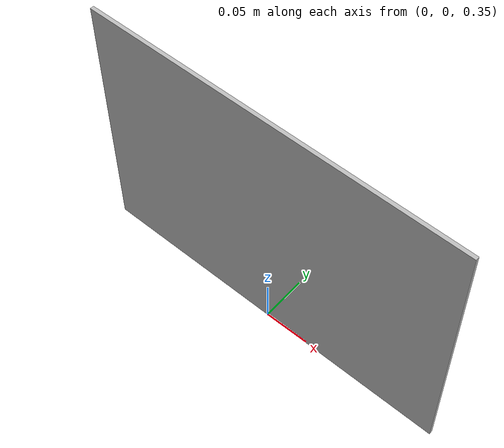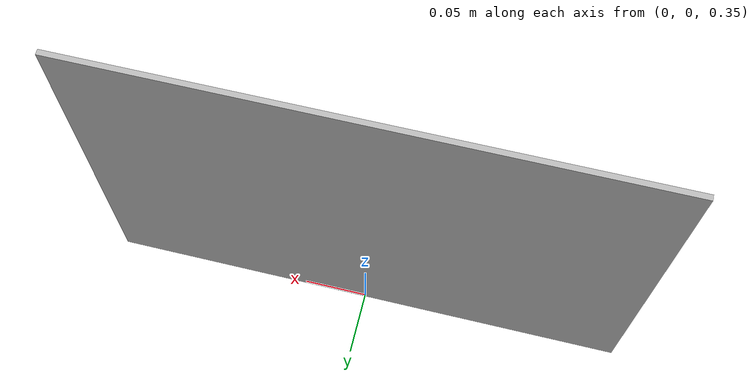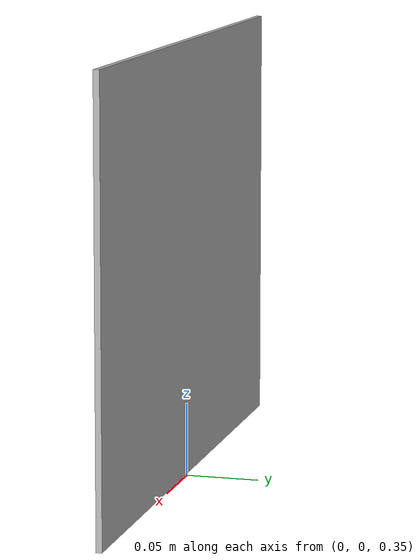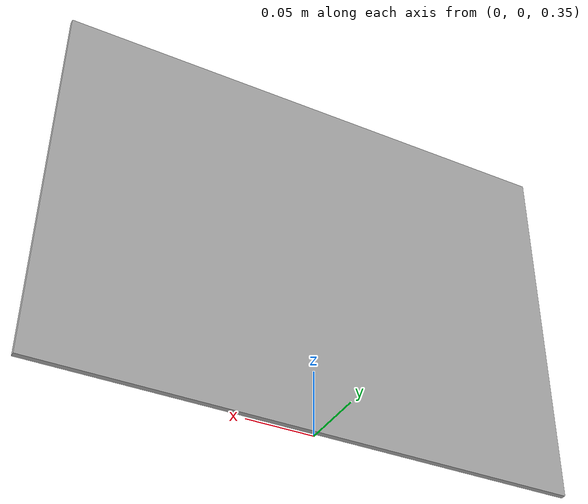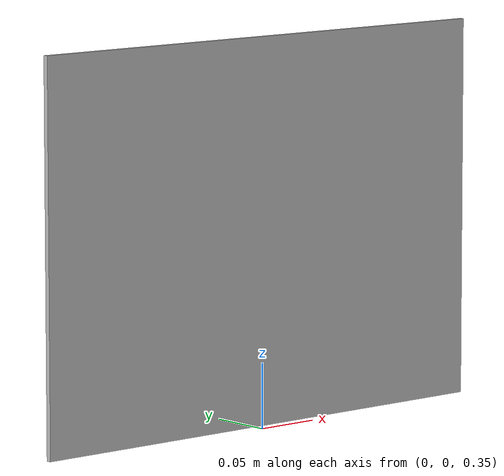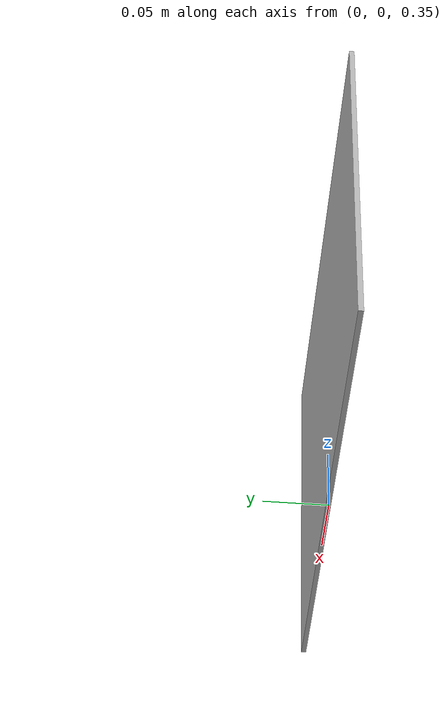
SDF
<?xml version="1.0" ?>
<sdf version="1.5">
  <model name="task_1_gif">
    <static>true</static>
    <pose> 0 0 0.5 0 0 0 </pose>
    <link name="link">
      <visual name="visual">
        <geometry>
          <box>
            <size>0.4088 0.004 0.294</size>
          </box>
        </geometry>
        <material>
          <script>
            <uri>model://task_1_gif/materials/scripts</uri>
            <uri>model://task_1_gif/materials/textures</uri>
            <name>Task_1_gif/Tex</name>
          </script>
        </material>
      </visual>
    </link>
  </model>
</sdf>
